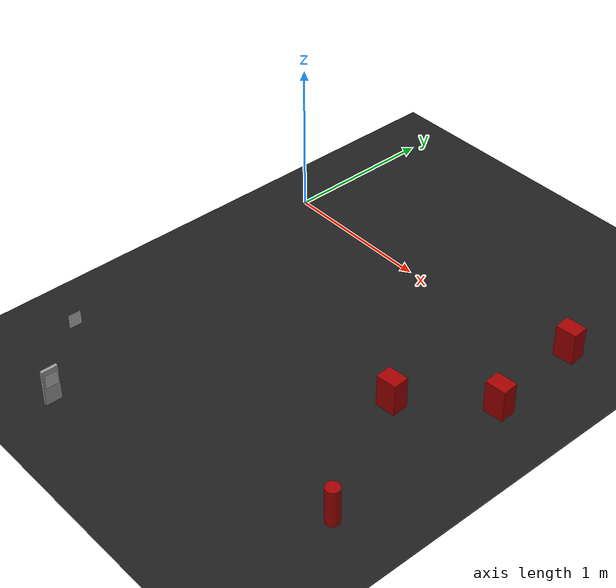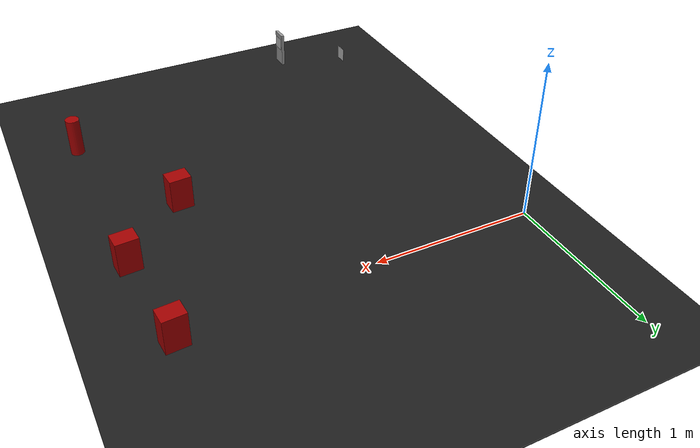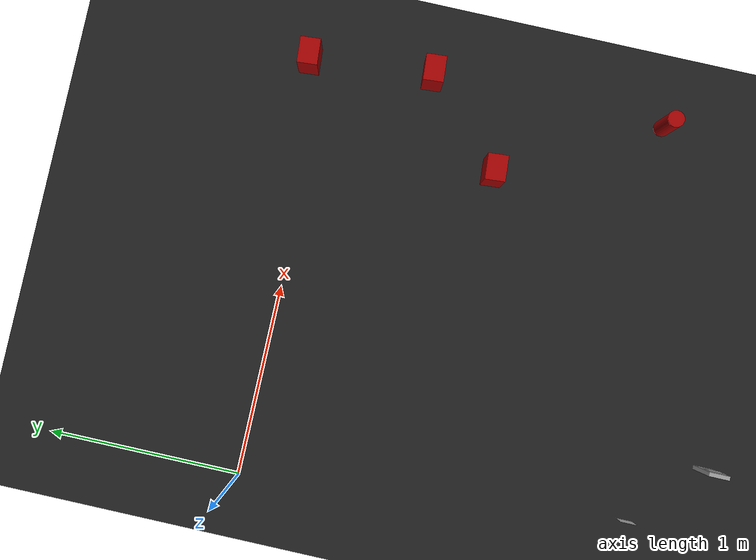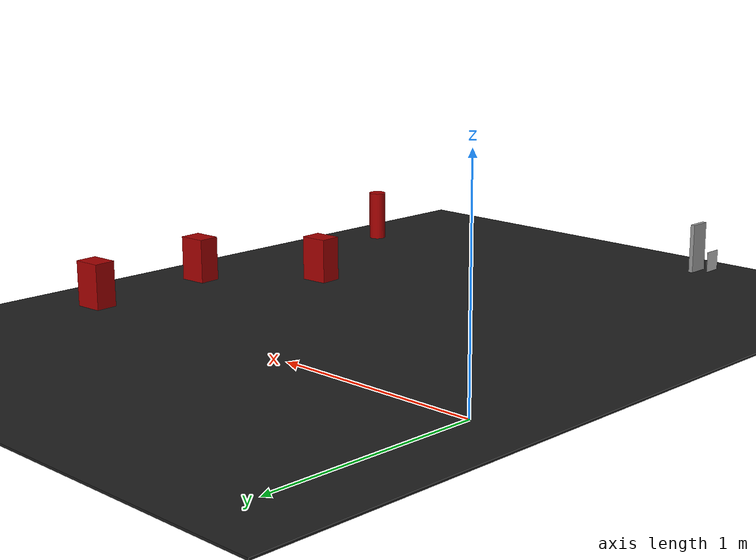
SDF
<sdf version="1.7">
 <world name="default">
  <model name="ground_plane">
   <pose>-0.598773 -0.01473 0 0 -0 0</pose>
   <static>1</static>
   <link name="link">
    <collision name="collision"><geometry><box><size>10 10 0.01</size></box></geometry></collision>
    <visual name="visual">
     <geometry><box><size>10 10 0.01</size></box></geometry>
     <material>
      <script><uri>file://media/materials/scripts/gazebo.material</uri><name>Gazebo/FlatBlack</name></script>
     </material>
    </visual>
   </link>
  </model>
  <model name="unit_box_clone">
   <link name="link">
    <inertial>
     <mass>1</mass>
     <inertia>
      <ixx>0.166667</ixx>
      <ixy>0</ixy>
      <ixz>0</ixz>
      <iyy>0.166667</iyy>
      <iyz>0</iyz>
      <izz>0.166667</izz>
     </inertia>
    </inertial>
    <visual name="visual">
     <geometry><box><size>0.021101 0.105496 0.239634</size></box></geometry>
     <material>
      <script><name>Gazebo/Grey</name><uri>file://media/materials/scripts/gazebo.material</uri></script>
      <shader type="pixel"/>
     </material>
    </visual>
    <collision name="collision">
     <geometry><box><size>0.021101 0.105496 0.239634</size></box></geometry>
     <surface>
      <friction>
       <ode><mu>1</mu><mu2>1</mu2><fdir1>0 0 0</fdir1><slip1>0</slip1><slip2>0</slip2></ode>
       <torsional>
        <coefficient>1</coefficient>
        <patch_radius>0</patch_radius>
        <surface_radius>0</surface_radius>
        <use_patch_radius>1</use_patch_radius>
        <ode><slip>0</slip></ode>
       </torsional>
      </friction>
      <bounce><restitution_coefficient>0</restitution_coefficient><threshold>1e+06</threshold></bounce>
      <contact>
       <collide_without_contact>0</collide_without_contact>
       <collide_without_contact_bitmask>1</collide_without_contact_bitmask>
       <collide_bitmask>1</collide_bitmask>
       <ode>
        <soft_cfm>0</soft_cfm>
        <soft_erp>0.2</soft_erp>
        <kp>1e+13</kp>
        <kd>1</kd>
        <max_vel>0.01</max_vel>
        <min_depth>0</min_depth>
       </ode>
       <bullet>
        <split_impulse>1</split_impulse>
        <split_impulse_penetration_threshold>-0.01</split_impulse_penetration_threshold>
        <soft_cfm>0</soft_cfm>
        <soft_erp>0.2</soft_erp>
        <kp>1e+13</kp>
        <kd>1</kd>
       </bullet>
      </contact>
     </surface>
    </collision>
   </link>
   <static>1</static>
   <pose>0.555124 -2.33324 0.16829 0 -0 0</pose>
  </model>
  <model name="marker2_1">
   <link name="marker">
    <inertial>
     <mass>0.1</mass>
     <inertia><ixx>0</ixx><ixy>0</ixy><ixz>0</ixz><iyy>0</iyy><iyz>0</iyz><izz>0</izz></inertia>
    </inertial>
    <self_collide>1</self_collide>
    <visual name="visual">
     <geometry><box><size>0.001 0.093286 0.084349</size></box></geometry>
     <material>
      <script>
       <uri>model://marker60_8cm/material/scripts</uri>
       <uri>model://marker60_8cm/material/textures</uri>
       <name>Aruco/marker60_8cm</name>
      </script>
      <shader type="pixel"><normal_map>__default__</normal_map></shader>
     </material>
    </visual>
    <collision name="collision">
     <geometry><box><size>0.001 0.093286 0.084349</size></box></geometry>
     <surface>
      <friction>
       <ode><mu>1</mu><mu2>1</mu2><fdir1>0 0 0</fdir1><slip1>0</slip1><slip2>0</slip2></ode>
       <torsional>
        <coefficient>1</coefficient>
        <patch_radius>0</patch_radius>
        <surface_radius>0</surface_radius>
        <use_patch_radius>1</use_patch_radius>
        <ode><slip>0</slip></ode>
       </torsional>
      </friction>
      <bounce><restitution_coefficient>0</restitution_coefficient><threshold>1e+06</threshold></bounce>
      <contact>
       <collide_without_contact>0</collide_without_contact>
       <collide_without_contact_bitmask>1</collide_without_contact_bitmask>
       <collide_bitmask>1</collide_bitmask>
       <ode>
        <soft_cfm>0</soft_cfm>
        <soft_erp>0.2</soft_erp>
        <kp>1e+13</kp>
        <kd>1</kd>
        <max_vel>0.01</max_vel>
        <min_depth>0</min_depth>
       </ode>
       <bullet>
        <split_impulse>1</split_impulse>
        <split_impulse_penetration_threshold>-0.01</split_impulse_penetration_threshold>
        <soft_cfm>0</soft_cfm>
        <soft_erp>0.2</soft_erp>
        <kp>1e+13</kp>
        <kd>1</kd>
       </bullet>
      </contact>
     </surface>
    </collision>
   </link>
   <static>1</static>
   <pose>0.230391 -1.95313 0.218456 -1.57 -1e-06 0</pose>
  </model>
  <model name="marker1_0">
   <link name="marker">
    <inertial>
     <mass>0.1</mass>
     <inertia><ixx>0</ixx><ixy>0</ixy><ixz>0</ixz><iyy>0</iyy><iyz>0</iyz><izz>0</izz></inertia>
    </inertial>
    <self_collide>1</self_collide>
    <visual name="visual">
     <geometry><box><size>0.001 0.089088 0.084916</size></box></geometry>
     <material>
      <script>
       <uri>model://marker100_8cm/material/scripts</uri>
       <uri>model://marker100_8cm/material/textures</uri>
       <name>Aruco/marker100_8cm</name>
      </script>
      <shader type="pixel"/>
     </material>
    </visual>
    <collision name="collision">
     <geometry><box><size>0.001 0.089088 0.084916</size></box></geometry>
     <surface>
      <friction>
       <ode><mu>1</mu><mu2>1</mu2><fdir1>0 0 0</fdir1><slip1>0</slip1><slip2>0</slip2></ode>
       <torsional>
        <coefficient>1</coefficient>
        <patch_radius>0</patch_radius>
        <surface_radius>0</surface_radius>
        <use_patch_radius>1</use_patch_radius>
        <ode><slip>0</slip></ode>
       </torsional>
      </friction>
      <bounce><restitution_coefficient>0</restitution_coefficient><threshold>1e+06</threshold></bounce>
      <contact>
       <collide_without_contact>0</collide_without_contact>
       <collide_without_contact_bitmask>1</collide_without_contact_bitmask>
       <collide_bitmask>1</collide_bitmask>
       <ode>
        <soft_cfm>0</soft_cfm>
        <soft_erp>0.2</soft_erp>
        <kp>1e+13</kp>
        <kd>1</kd>
        <max_vel>0.01</max_vel>
        <min_depth>0</min_depth>
       </ode>
       <bullet>
        <split_impulse>1</split_impulse>
        <split_impulse_penetration_threshold>-0.01</split_impulse_penetration_threshold>
        <soft_cfm>0</soft_cfm>
        <soft_erp>0.2</soft_erp>
        <kp>1e+13</kp>
        <kd>1</kd>
       </bullet>
      </contact>
     </surface>
    </collision>
   </link>
   <static>1</static>
   <pose>0.569169 -2.33192 0.213336 -1.5723 -0 -3.14</pose>
  </model>
  <model name="unit_box_0_clone_0">
   <link name="link">
    <inertial>
     <mass>1</mass>
     <inertia>
      <ixx>0.166667</ixx>
      <ixy>0</ixy>
      <ixz>0</ixz>
      <iyy>0.166667</iyy>
      <iyz>0</iyz>
      <izz>0.166667</izz>
     </inertia>
    </inertial>
    <visual name="visual">
     <geometry><box><size>0.134792 0.104857 0.213276</size></box></geometry>
     <material>
      <script><name>Gazebo/Grey</name><uri>file://media/materials/scripts/gazebo.material</uri></script>
      <shader type="pixel"><normal_map>__default__</normal_map></shader>
      <diffuse>0.643 0 0 1</diffuse>
      <ambient>0.3 0.3 0.3 1</ambient>
      <specular>0.01 0.01 0.01 1</specular>
      <emissive>0 0 0 1</emissive>
     </material>
    </visual>
    <collision name="collision">
     <geometry><box><size>0.134792 0.104857 0.213276</size></box></geometry>
     <surface>
      <friction>
       <ode><mu>1</mu><mu2>1</mu2><fdir1>0 0 0</fdir1><slip1>0</slip1><slip2>0</slip2></ode>
       <torsional>
        <coefficient>1</coefficient>
        <patch_radius>0</patch_radius>
        <surface_radius>0</surface_radius>
        <use_patch_radius>1</use_patch_radius>
        <ode><slip>0</slip></ode>
       </torsional>
      </friction>
      <bounce><restitution_coefficient>0</restitution_coefficient><threshold>1e+06</threshold></bounce>
      <contact>
       <collide_without_contact>0</collide_without_contact>
       <collide_without_contact_bitmask>1</collide_without_contact_bitmask>
       <collide_bitmask>1</collide_bitmask>
       <ode>
        <soft_cfm>0</soft_cfm>
        <soft_erp>0.2</soft_erp>
        <kp>1e+13</kp>
        <kd>1</kd>
        <max_vel>0.01</max_vel>
        <min_depth>0</min_depth>
       </ode>
       <bullet>
        <split_impulse>1</split_impulse>
        <split_impulse_penetration_threshold>-0.01</split_impulse_penetration_threshold>
        <soft_cfm>0</soft_cfm>
        <soft_erp>0.2</soft_erp>
        <kp>1e+13</kp>
        <kd>1</kd>
       </bullet>
      </contact>
     </surface>
    </collision>
   </link>
   <static>1</static>
   <pose>2.18757 0.107993 0.142591 0 -0 0.069397</pose>
  </model>
  <model name="unit_box_0_clone_1">
   <link name="link">
    <inertial>
     <mass>1</mass>
     <inertia>
      <ixx>0.166667</ixx>
      <ixy>0</ixy>
      <ixz>0</ixz>
      <iyy>0.166667</iyy>
      <iyz>0</iyz>
      <izz>0.166667</izz>
     </inertia>
    </inertial>
    <visual name="visual">
     <geometry><box><size>0.134792 0.104857 0.213276</size></box></geometry>
     <material>
      <script><name>Gazebo/Grey</name><uri>file://media/materials/scripts/gazebo.material</uri></script>
      <shader type="pixel"><normal_map>__default__</normal_map></shader>
      <diffuse>0.643 0 0 1</diffuse>
      <ambient>0.3 0.3 0.3 1</ambient>
      <specular>0.01 0.01 0.01 1</specular>
      <emissive>0 0 0 1</emissive>
     </material>
    </visual>
    <collision name="collision">
     <geometry><box><size>0.134792 0.104857 0.213276</size></box></geometry>
     <surface>
      <friction>
       <ode><mu>1</mu><mu2>1</mu2><fdir1>0 0 0</fdir1><slip1>0</slip1><slip2>0</slip2></ode>
       <torsional>
        <coefficient>1</coefficient>
        <patch_radius>0</patch_radius>
        <surface_radius>0</surface_radius>
        <use_patch_radius>1</use_patch_radius>
        <ode><slip>0</slip></ode>
       </torsional>
      </friction>
      <bounce><restitution_coefficient>0</restitution_coefficient><threshold>1e+06</threshold></bounce>
      <contact>
       <collide_without_contact>0</collide_without_contact>
       <collide_without_contact_bitmask>1</collide_without_contact_bitmask>
       <collide_bitmask>1</collide_bitmask>
       <ode>
        <soft_cfm>0</soft_cfm>
        <soft_erp>0.2</soft_erp>
        <kp>1e+13</kp>
        <kd>1</kd>
        <max_vel>0.01</max_vel>
        <min_depth>0</min_depth>
       </ode>
       <bullet>
        <split_impulse>1</split_impulse>
        <split_impulse_penetration_threshold>-0.01</split_impulse_penetration_threshold>
        <soft_cfm>0</soft_cfm>
        <soft_erp>0.2</soft_erp>
        <kp>1e+13</kp>
        <kd>1</kd>
       </bullet>
      </contact>
     </surface>
    </collision>
   </link>
   <static>1</static>
   <pose>2.24074 -0.53365 0.142591 0 -0 0.069397</pose>
  </model>
  <model name="unit_cylinder_clone_clone_6">
   <link name="link">
    <inertial>
     <mass>1</mass>
     <inertia><ixx>0.145833</ixx><ixy>0</ixy><ixz>0</ixz><iyy>0.145833</iyy><iyz>0</iyz><izz>0.125</izz></inertia>
    </inertial>
    <visual name="visual">
     <geometry><cylinder><radius>0.0428756</radius><length>0.247552</length></cylinder></geometry>
     <material>
      <script><name>Gazebo/Grey</name><uri>file://media/materials/scripts/gazebo.material</uri></script>
      <shader type="pixel"><normal_map>__default__</normal_map></shader>
      <diffuse>0.643 0 0 1</diffuse>
      <ambient>0.3 0.3 0.3 1</ambient>
      <specular>0.01 0.01 0.01 1</specular>
      <emissive>0 0 0 1</emissive>
     </material>
    </visual>
    <collision name="collision">
     <geometry><cylinder><radius>0.042876</radius><length>0.247552</length></cylinder></geometry>
     <surface>
      <friction>
       <ode><mu>1</mu><mu2>1</mu2><fdir1>0 0 0</fdir1><slip1>0</slip1><slip2>0</slip2></ode>
       <torsional>
        <coefficient>1</coefficient>
        <patch_radius>0</patch_radius>
        <surface_radius>0</surface_radius>
        <use_patch_radius>1</use_patch_radius>
        <ode><slip>0</slip></ode>
       </torsional>
      </friction>
      <bounce><restitution_coefficient>0</restitution_coefficient><threshold>1e+06</threshold></bounce>
      <contact>
       <collide_without_contact>0</collide_without_contact>
       <collide_without_contact_bitmask>1</collide_without_contact_bitmask>
       <collide_bitmask>1</collide_bitmask>
       <ode>
        <soft_cfm>0</soft_cfm>
        <soft_erp>0.2</soft_erp>
        <kp>1e+13</kp>
        <kd>1</kd>
        <max_vel>0.01</max_vel>
        <min_depth>0</min_depth>
       </ode>
       <bullet>
        <split_impulse>1</split_impulse>
        <split_impulse_penetration_threshold>-0.01</split_impulse_penetration_threshold>
        <soft_cfm>0</soft_cfm>
        <soft_erp>0.2</soft_erp>
        <kp>1e+13</kp>
        <kd>1</kd>
       </bullet>
      </contact>
     </surface>
    </collision>
   </link>
   <static>0</static>
   <pose>2.23884 -1.76145 0.173782 -0.000159 -3.4e-05 -0.05788</pose>
  </model>
  <model name="unit_box_0_clone_1_clone">
   <link name="link">
    <inertial>
     <mass>1</mass>
     <inertia>
      <ixx>0.166667</ixx>
      <ixy>0</ixy>
      <ixz>0</ixz>
      <iyy>0.166667</iyy>
      <iyz>0</iyz>
      <izz>0.166667</izz>
     </inertia>
    </inertial>
    <visual name="visual">
     <geometry><box><size>0.134792 0.104857 0.213276</size></box></geometry>
     <material>
      <script><name>Gazebo/Grey</name><uri>file://media/materials/scripts/gazebo.material</uri></script>
      <shader type="pixel"><normal_map>__default__</normal_map></shader>
      <diffuse>0.643 0 0 1</diffuse>
      <ambient>0.3 0.3 0.3 1</ambient>
      <specular>0.01 0.01 0.01 1</specular>
      <emissive>0 0 0 1</emissive>
     </material>
    </visual>
    <collision name="collision">
     <geometry><box><size>0.134792 0.104857 0.213276</size></box></geometry>
     <surface>
      <friction>
       <ode><mu>1</mu><mu2>1</mu2><fdir1>0 0 0</fdir1><slip1>0</slip1><slip2>0</slip2></ode>
       <torsional>
        <coefficient>1</coefficient>
        <patch_radius>0</patch_radius>
        <surface_radius>0</surface_radius>
        <use_patch_radius>1</use_patch_radius>
        <ode><slip>0</slip></ode>
       </torsional>
      </friction>
      <bounce><restitution_coefficient>0</restitution_coefficient><threshold>1e+06</threshold></bounce>
      <contact>
       <collide_without_contact>0</collide_without_contact>
       <collide_without_contact_bitmask>1</collide_without_contact_bitmask>
       <collide_bitmask>1</collide_bitmask>
       <ode>
        <soft_cfm>0</soft_cfm>
        <soft_erp>0.2</soft_erp>
        <kp>1e+13</kp>
        <kd>1</kd>
        <max_vel>0.01</max_vel>
        <min_depth>0</min_depth>
       </ode>
       <bullet>
        <split_impulse>1</split_impulse>
        <split_impulse_penetration_threshold>-0.01</split_impulse_penetration_threshold>
        <soft_cfm>0</soft_cfm>
        <soft_erp>0.2</soft_erp>
        <kp>1e+13</kp>
        <kd>1</kd>
       </bullet>
      </contact>
     </surface>
    </collision>
   </link>
   <static>1</static>
   <pose>1.81542 -0.945275 0.142591 0 -0 0.069397</pose>
  </model>
 </world>
</sdf>
